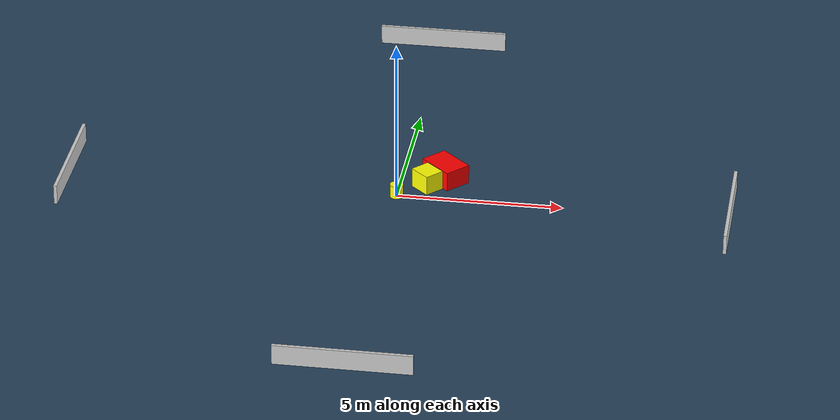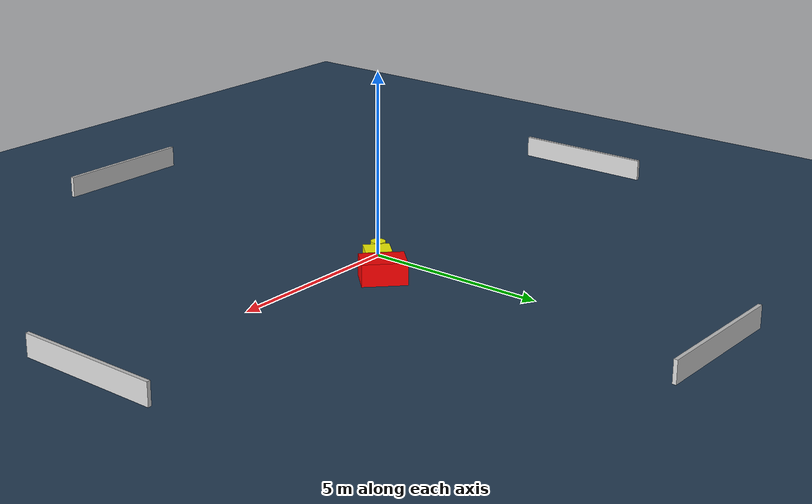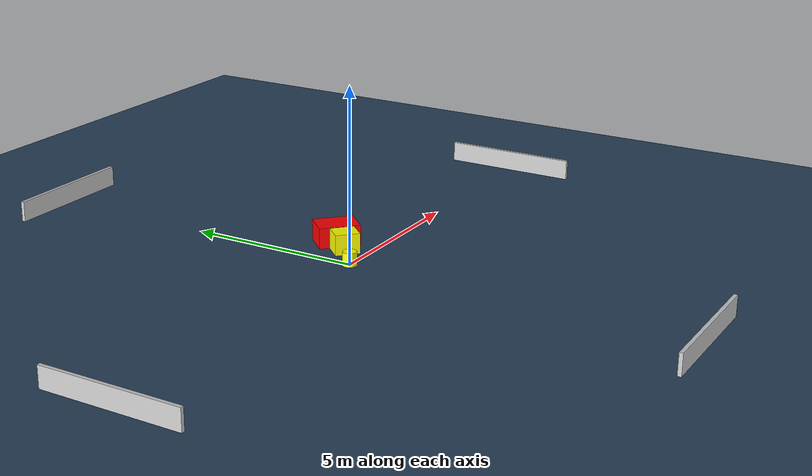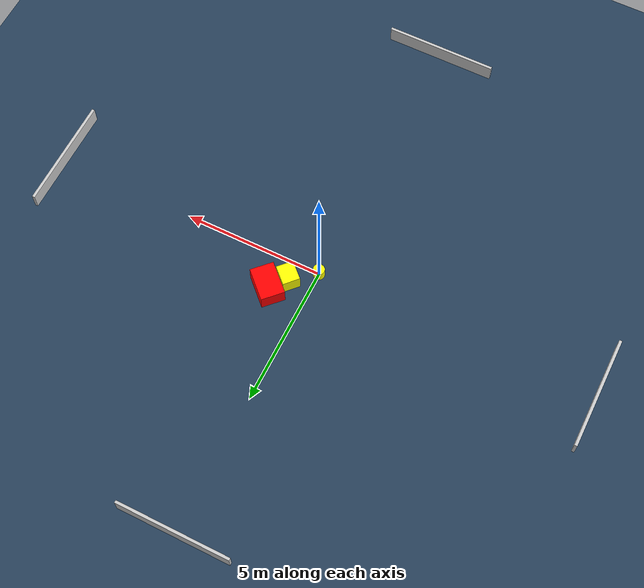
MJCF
<?xml version="1.0" ?>
<mujoco model="generated_environment">
  <option timestep="0.01" integrator="RK4" cone="elliptic"/>
  <default>
    <geom density="1"/>
  </default>
  <asset>
    <texture builtin="gradient" height="3072" name="skybox" rgb1="0.3 0.5 0.7" rgb2="0 0 0" type="skybox" width="512"/>
    <texture builtin="checker" height="300" name="groundplane" rgb1="0.2 0.3 0.4" rgb2="0.1 0.2 0.3" type="2d" width="300"/>
    <material name="groundplane" reflectance="0.2" texrepeat="5 5" texture="groundplane"/>
  </asset>
  <worldbody>
    <light dir="0 0 -1" directional="true" pos="0 0 1.5"/>
    <geom condim="3" friction="0.5 0.005 0.001" material="groundplane" name="floor" pos="0 0 0" size="0 0 0.05" type="plane"/>
    <body name="walls">
      <geom name="wall_1" condim="4" pos="-10.0 0.0 0.3" rgba="0.800000011920929 0.800000011920929 0.800000011920929 1.0" size="0.05 2.0 0.3" type="box"/>
      <geom name="wall_2" condim="4" pos="10.0 0.0 0.3" rgba="0.800000011920929 0.800000011920929 0.800000011920929 1.0" size="0.05 2.0 0.3" type="box"/>
      <geom name="wall_3" condim="4" pos="0.0 -10.0 0.3" rgba="0.800000011920929 0.800000011920929 0.800000011920929 1.0" size="2.0 0.05 0.3" type="box"/>
      <geom name="wall_4" condim="4" pos="0.0 10.0 0.3" rgba="0.800000011920929 0.800000011920929 0.800000011920929 1.0" size="2.0 0.05 0.3" type="box"/>
    </body>
    <body name="robot">
      <joint name="joint_x" type="slide" pos="0 0 0" axis="1 0 0"/>
      <joint name="joint_y" type="slide" pos="0 0 0" axis="0 1 0"/>
      <geom name="robot" type="cylinder" pos="0.0 0.0 0.2" size="0.2 0.2 0.0" mass="5.0" friction="1.0 0.005 0.0001" condim="4" rgba="1.0 1.0 0.0 1.0"/>
    </body>
    <body name="obstacle_1_movable">
      <geom name="obstacle_1_movable" condim="4" pos="0.8292969360462977 0.6617727272516045 0.3" euler="0 0 226.98961000780278" friction="0.0 0.005 0.001" rgba="1.0 1.0 0.0 1.0" size="0.30469822694191195 0.35176870944935595 0.3" type="box" mass="0.1"/>
      <joint type="free"/>
    </body>
    <body name="obstacle_2_static">
      <geom name="obstacle_2_static" condim="4" pos="1.3098280680294057 1.2396985940541176 0.3" euler="0 0 316.22245401452096" friction="0.0 0.005 0.001" rgba="1.0 0.0 0.0 1.0" size="0.5945856004966226 0.41908752153003104 0.3" type="box"/>
    </body>
  </worldbody>
  <actuator>
    <motor name="actuator_x" joint="joint_x" gear="1" ctrlrange="-1 1"/>
    <motor name="actuator_y" joint="joint_y" gear="1" ctrlrange="-1 1"/>
  </actuator>
</mujoco>
